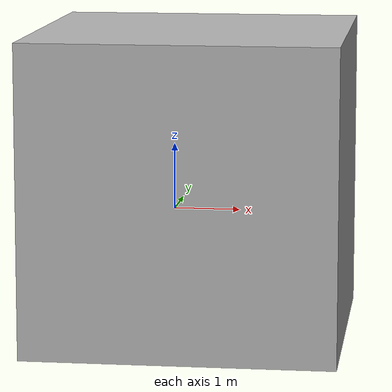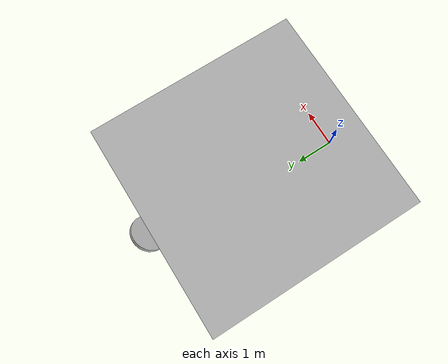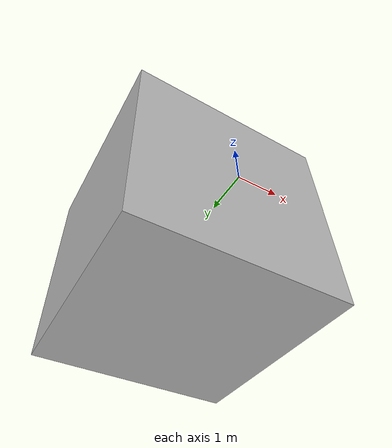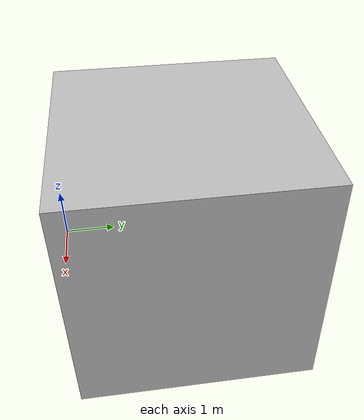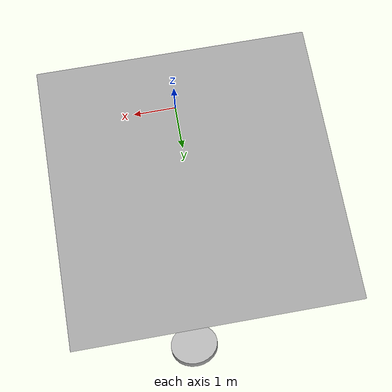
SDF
<?xml version='1.0' ?>
<sdf version='1.6'>
  <model name='simple_collision_world'>
    <pose>0 0 0 0 0 0</pose>
    <link name='large_box'>
      <pose>0 2.5 0 0 0 0</pose>
      <inertial>
        <mass>1.0</mass>
        <inertia>
          <ixx>1.0</ixx>
          <ixy>0.0</ixy>
          <ixz>0.0</ixz>
          <iyy>1.0</iyy>
          <iyz>0.0</iyz>
          <izz>1.0</izz>
        </inertia>
      </inertial>
      <visual name='box'>
        <geometry>
          <box>
            <size>5.0 5.0 5.0</size>
          </box>
        </geometry>
      </visual>
      <collision name='box'>
        <geometry>
          <box>
            <size>5.0 5.0 5.0</size>
          </box>
        </geometry>
      </collision>
    </link>

    <link name='cylinder'>
      <pose>0.5 5.4 0 0.7 0 0.0 </pose>
      <inertial>
        <mass>1.0</mass>
        <inertia>
          <ixx>1.0</ixx>
          <ixy>0.0</ixy>
          <ixz>0.0</ixz>
          <iyy>1.0</iyy>
          <iyz>0.0</iyz>
          <izz>1.0</izz>
        </inertia>
      </inertial>
      <visual name='cyl_visual'>
        <geometry>
          <cylinder>
            <length>0.1</length>
            <radius>0.5</radius>
          </cylinder>
        </geometry>
      </visual>
      <collision name='cyl_collision'>
	<pose>0 0.0 0.0 0 0 0</pose>
        <geometry>
          <cylinder>
            <length>0.1</length>
            <radius>0.5</radius>
          </cylinder>
        </geometry>
      </collision>
    </link>

  </model>
</sdf>
